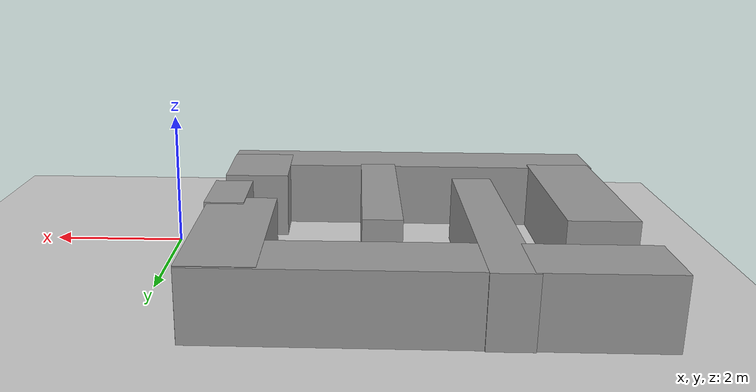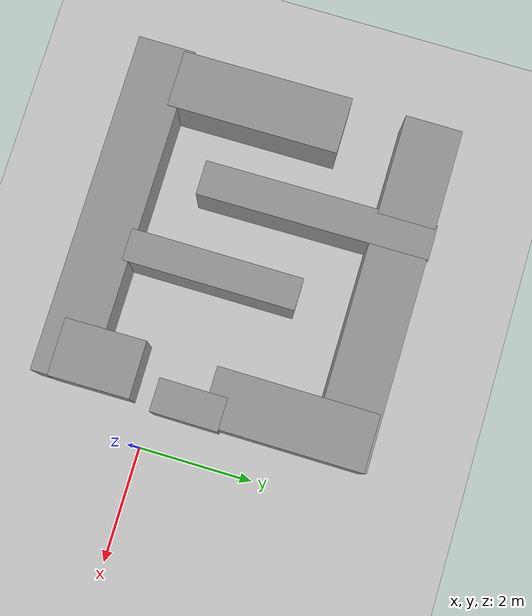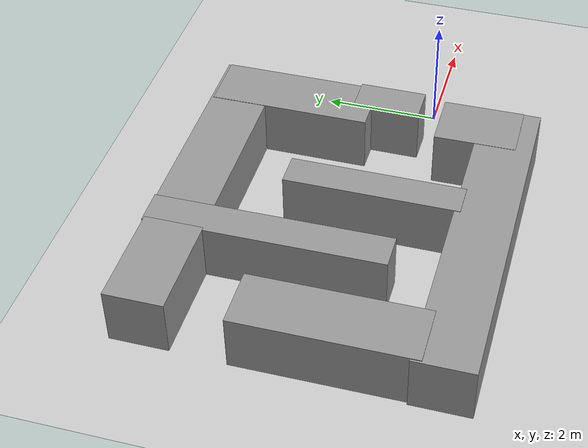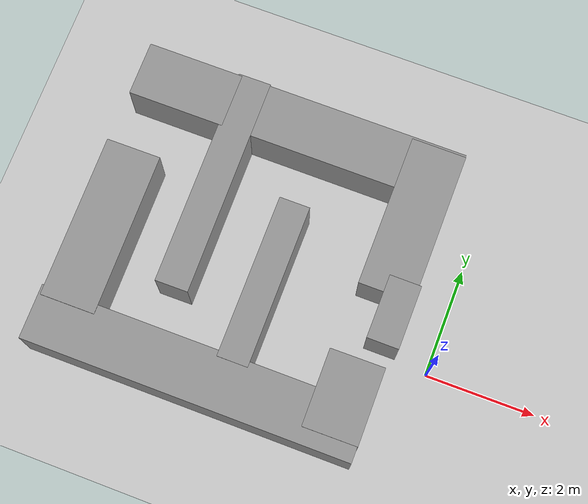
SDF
<sdf version="1.7">
 <world name="default">
  <light name="sun" type="directional">
   <pose>0 0 10 0 -0 0</pose>
   <diffuse>0.8 0.8 0.8 1</diffuse>
   <specular>0.2 0.2 0.2 1</specular>
   <attenuation>
    <range>1000</range>
    <constant>0.9</constant>
    <linear>0.01</linear>
    <quadratic>0.001</quadratic>
   </attenuation>
   <direction>-0.5 0.1 -0.9</direction>
   <spot><inner_angle>0</inner_angle><outer_angle>0</outer_angle><falloff>0</falloff></spot>
  </light>
  <model name="ground_plane">
   <static>1</static>
   <link name="link">
    <collision name="collision">
     <geometry><plane><normal>0 0 1</normal><size>100 100</size></plane></geometry>
     <surface>
      <contact><collide_bitmask>65535</collide_bitmask></contact>
      <friction><ode><mu>100</mu><mu2>50</mu2></ode></friction>
     </surface>
    </collision>
    <visual name="visual">
     <cast_shadows>0</cast_shadows>
     <geometry><plane><normal>0 0 1</normal><size>100 100</size></plane></geometry>
     <material>
      <script><uri>file://media/materials/scripts/gazebo.material</uri><name>Gazebo/Grey</name></script>
     </material>
    </visual>
   </link>
  </model>
  <gravity>0 0 -9.8</gravity>
  <magnetic_field>6e-06 2.3e-05 -4.2e-05</magnetic_field>
  <atmosphere type="adiabatic"/>
  <physics type="ode">
   <max_step_size>0.001</max_step_size>
   <real_time_factor>1</real_time_factor>
   <real_time_update_rate>1000</real_time_update_rate>
  </physics>
  <scene><ambient>0.4 0.4 0.4 1</ambient><background>0.7 0.7 0.7 1</background><shadows>1</shadows></scene>
  <spherical_coordinates>
   <surface_model>EARTH_WGS84</surface_model>
   <latitude_deg>0</latitude_deg>
   <longitude_deg>0</longitude_deg>
   <elevation>0</elevation>
   <heading_deg>0</heading_deg>
  </spherical_coordinates>
  <model name="unit_box">
   <static>1</static>
   <pose>-3.70474 -1.51244 0.492541 0 -0.001608 -0.000125</pose>
   <link name="link">
    <inertial>
     <mass>1</mass>
     <inertia>
      <ixx>0.166667</ixx>
      <ixy>0</ixy>
      <ixz>0</ixz>
      <iyy>0.166667</iyy>
      <iyz>0</iyz>
      <izz>0.166667</izz>
     </inertia>
    </inertial>
    <collision name="collision"><geometry><box><size>6 1 1</size></box></geometry></collision>
    <visual name="visual">
     <geometry><box><size>6 1 1</size></box></geometry>
     <material>
      <script><name>Gazebo/Grey</name><uri>file://media/materials/scripts/gazebo.material</uri></script>
     </material>
    </visual>
   </link>
  </model>
  <model name="unit_box_clone">
   <static>1</static>
   <pose>-3.65327 3.25829 0.498023 0 0.001608 -0.000125</pose>
   <link name="link">
    <inertial>
     <mass>1</mass>
     <inertia>
      <ixx>0.166667</ixx>
      <ixy>0</ixy>
      <ixz>0</ixz>
      <iyy>0.166667</iyy>
      <iyz>0</iyz>
      <izz>0.166667</izz>
     </inertia>
    </inertial>
    <collision name="collision"><geometry><box><size>6 1 1</size></box></geometry></collision>
    <visual name="visual">
     <geometry><box><size>6 1 1</size></box></geometry>
     <material>
      <script><name>Gazebo/Grey</name><uri>file://media/materials/scripts/gazebo.material</uri></script>
     </material>
    </visual>
   </link>
  </model>
  <model name="unit_box_0">
   <static>1</static>
   <pose>-6.17432 0.312292 0.500002 -0 1e-06 0.003759</pose>
   <link name="link">
    <inertial>
     <mass>1</mass>
     <inertia>
      <ixx>0.166667</ixx>
      <ixy>0</ixy>
      <ixz>0</ixz>
      <iyy>0.166667</iyy>
      <iyz>0</iyz>
      <izz>0.166667</izz>
     </inertia>
    </inertial>
    <collision name="collision"><geometry><box><size>1 3 1</size></box></geometry></collision>
    <visual name="visual">
     <geometry><box><size>1 3 1</size></box></geometry>
     <material>
      <script><name>Gazebo/Grey</name><uri>file://media/materials/scripts/gazebo.material</uri></script>
     </material>
    </visual>
   </link>
  </model>
  <model name="unit_box_0_clone">
   <static>1</static>
   <pose>-3.17157 0.382791 0.499825 -0.000117 -0 0.000118</pose>
   <link name="link">
    <inertial>
     <mass>1</mass>
     <inertia>
      <ixx>0.166667</ixx>
      <ixy>0</ixy>
      <ixz>0</ixz>
      <iyy>0.166667</iyy>
      <iyz>0</iyz>
      <izz>0.166667</izz>
     </inertia>
    </inertial>
    <collision name="collision"><geometry><box><size>0.56307 3 1</size></box></geometry></collision>
    <visual name="visual">
     <geometry><box><size>0.56307 3 1</size></box></geometry>
     <material>
      <script><name>Gazebo/Grey</name><uri>file://media/materials/scripts/gazebo.material</uri></script>
     </material>
    </visual>
   </link>
  </model>
  <model name="unit_box_2">
   <static>1</static>
   <pose>-1.14548 2.32193 0.5 0 0 -0.0014</pose>
   <link name="link">
    <inertial>
     <mass>1</mass>
     <inertia>
      <ixx>0.166667</ixx>
      <ixy>0</ixy>
      <ixz>0</ixz>
      <iyy>0.166667</iyy>
      <iyz>0</iyz>
      <izz>0.166667</izz>
     </inertia>
    </inertial>
    <collision name="collision"><geometry><box><size>1 2.79349 1</size></box></geometry></collision>
    <visual name="visual">
     <geometry><box><size>1 2.79349 1</size></box></geometry>
     <material>
      <script><name>Gazebo/Grey</name><uri>file://media/materials/scripts/gazebo.material</uri></script>
     </material>
    </visual>
   </link>
  </model>
  <model name="unit_box_3">
   <static>1</static>
   <pose>-1.20221 -1.0134 0.499995 0 -1e-05 0.00793</pose>
   <link name="link">
    <inertial>
     <mass>1</mass>
     <inertia>
      <ixx>0.166667</ixx>
      <ixy>0</ixy>
      <ixz>0</ixz>
      <iyy>0.166667</iyy>
      <iyz>0</iyz>
      <izz>0.166667</izz>
     </inertia>
    </inertial>
    <collision name="collision"><geometry><box><size>1 1.4112 1</size></box></geometry></collision>
    <visual name="visual">
     <geometry><box><size>1 1.4112 1</size></box></geometry>
     <material>
      <script><name>Gazebo/Grey</name><uri>file://media/materials/scripts/gazebo.material</uri></script>
     </material>
    </visual>
   </link>
  </model>
  <model name="unit_box_4">
   <static>1</static>
   <pose>-4.63785 1.75834 0.5 0 -0 0.006444</pose>
   <link name="link">
    <inertial>
     <mass>1</mass>
     <inertia>
      <ixx>0.166667</ixx>
      <ixy>0</ixy>
      <ixz>0</ixz>
      <iyy>0.166667</iyy>
      <iyz>0</iyz>
      <izz>0.166667</izz>
     </inertia>
    </inertial>
    <collision name="collision"><geometry><box><size>0.605058 4.0504 1</size></box></geometry></collision>
    <visual name="visual">
     <geometry><box><size>0.605058 4.0504 1</size></box></geometry>
     <material>
      <script><name>Gazebo/Grey</name><uri>file://media/materials/scripts/gazebo.material</uri></script>
     </material>
    </visual>
   </link>
  </model>
  <model name="unit_box_6">
   <static>1</static>
   <pose>-0.89893 0.65634 0.516915 0 0 -0.002842</pose>
   <link name="link">
    <inertial>
     <mass>1</mass>
     <inertia>
      <ixx>0.166667</ixx>
      <ixy>0</ixy>
      <ixz>0</ixz>
      <iyy>0.166667</iyy>
      <iyz>0</iyz>
      <izz>0.166667</izz>
     </inertia>
    </inertial>
    <collision name="collision"><geometry><box><size>0.581924 1.17091 1</size></box></geometry></collision>
    <visual name="visual">
     <geometry><box><size>0.581924 1.17091 1</size></box></geometry>
     <material>
      <script><name>Gazebo/Grey</name><uri>file://media/materials/scripts/gazebo.material</uri></script>
     </material>
    </visual>
   </link>
  </model>
  <light name="user_directional_light_0" type="directional">
   <pose>-5.10274 0.966795 1 0 -0 0</pose>
   <diffuse>0.5 0.5 0.5 1</diffuse>
   <specular>0.1 0.1 0.1 1</specular>
   <direction>0.1 0.1 -0.9</direction>
   <attenuation>
    <range>20</range>
    <constant>0.5</constant>
    <linear>0.01</linear>
    <quadratic>0.001</quadratic>
   </attenuation>
   <spot><inner_angle>0</inner_angle><outer_angle>0</outer_angle><falloff>0</falloff></spot>
  </light>
 </world>
</sdf>
